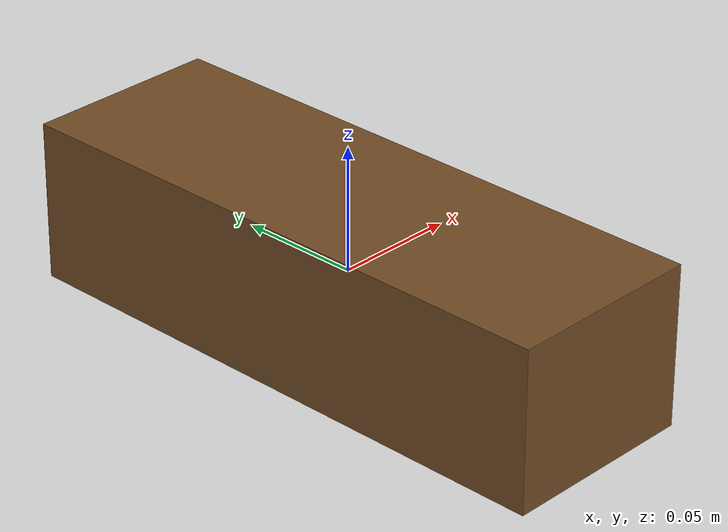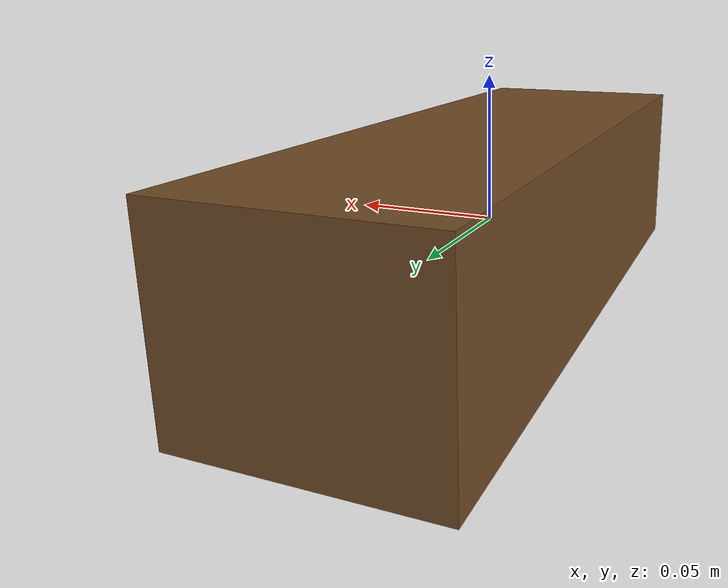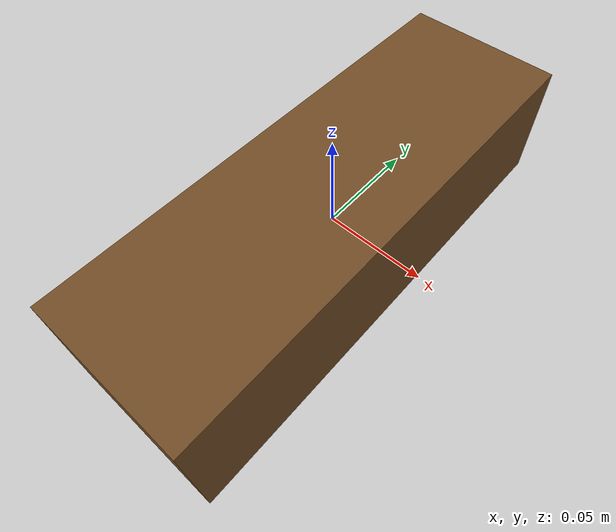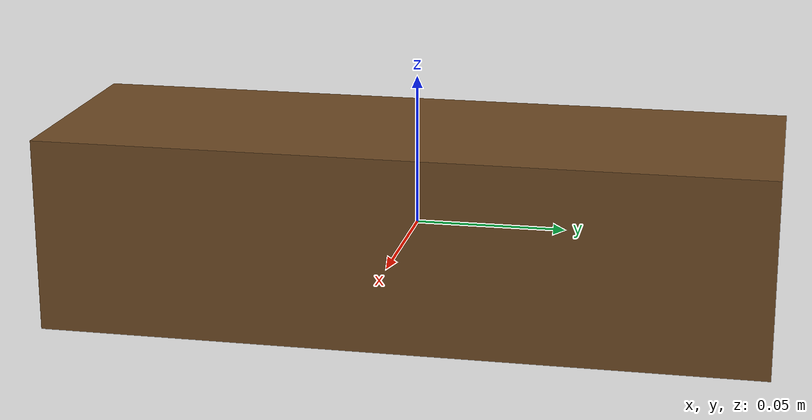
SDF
<?xml version="1.0"?>
<sdf version="1.6">
  <model name="detect_table">
    <static>true</static>
    <link name="link">
      <collision name="collision"><geometry><box><size>0.08 0.24 0.065</size></box></geometry></collision>
      <visual name="visual">
        <geometry><box><size>0.08 0.24 0.065</size></box></geometry>
        <material><ambient>0.45 0.3 0.15 1</ambient><diffuse>0.45 0.3 0.15 1</diffuse></material>
      </visual>
    </link>
  </model>
</sdf>
